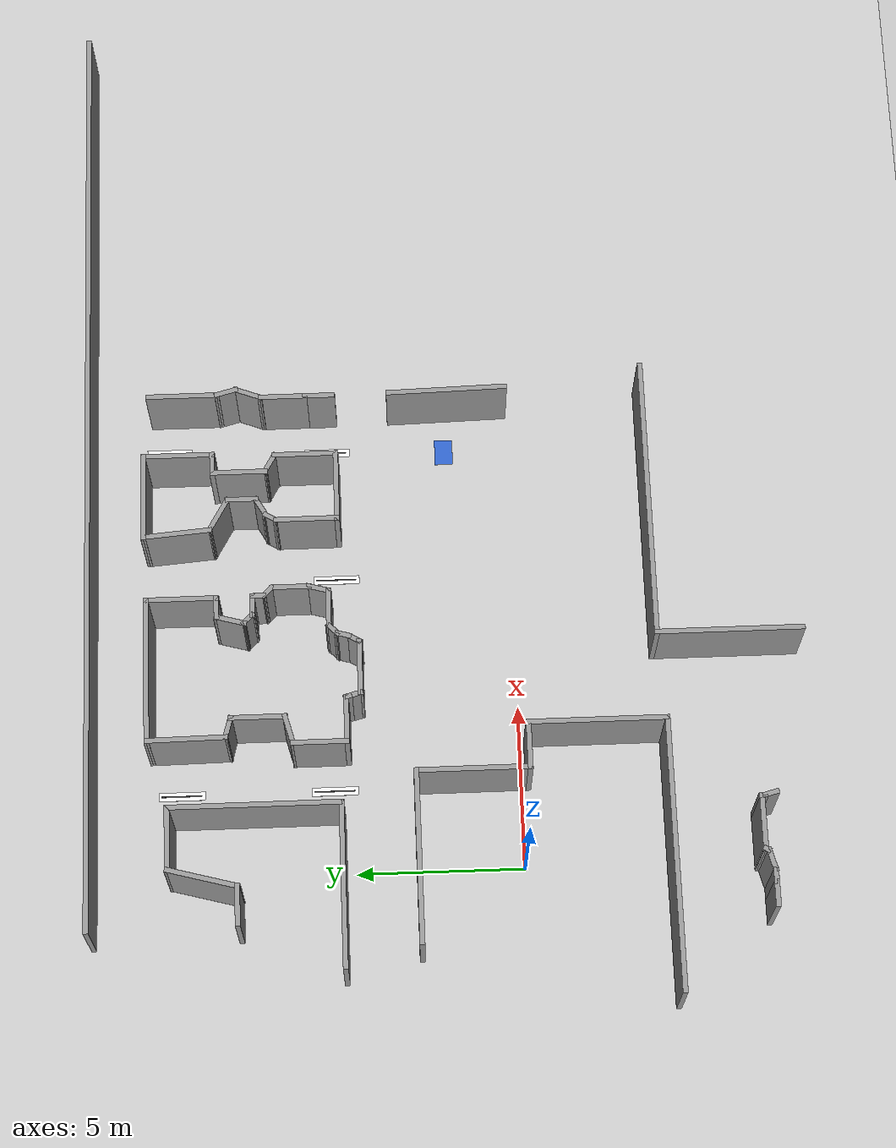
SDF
<sdf version="1.7">
 <world name="default">
  <model name="ground_plane">
   <static>1</static>
   <link name="link">
    <collision name="collision">
     <geometry><plane><normal>0 0 1</normal><size>100 100</size></plane></geometry>
     <surface>
      <contact><collide_bitmask>65535</collide_bitmask></contact>
      <friction><ode><mu>100</mu><mu2>50</mu2></ode></friction>
     </surface>
    </collision>
    <visual name="visual">
     <cast_shadows>0</cast_shadows>
     <geometry><plane><normal>0 0 1</normal><size>100 100</size></plane></geometry>
     <material>
      <script><uri>file://media/materials/scripts/gazebo.material</uri><name>Gazebo/Grey</name></script>
     </material>
    </visual>
   </link>
  </model>
  <model name="latest_world">
   <pose>-1.4911 -0.096187 0 0 -0 0</pose>
   <link name="Wall_2">
    <collision name="Wall_2_Collision">
     <geometry><box><size>29 0.15 2.5</size></box></geometry>
     <pose>0 0 1.25 0 -0 0</pose>
    </collision>
    <visual name="Wall_2_Visual">
     <pose>0 0 1.25 0 -0 0</pose>
     <geometry><box><size>29 0.15 2.5</size></box></geometry>
     <material>
      <script><uri>file://media/materials/scripts/gazebo.material</uri><name>Gazebo/Grey</name></script>
      <ambient>1 1 1 1</ambient>
     </material>
     <meta><layer>0</layer></meta>
    </visual>
    <pose>13.9801 12.9157 0 0 -0 0</pose>
   </link>
   <link name="Wall_293">
    <collision name="Wall_293_Collision">
     <geometry><box><size>0.5 0.15 2.5</size></box></geometry>
     <pose>0 0 1.25 0 -0 0</pose>
    </collision>
    <visual name="Wall_293_Visual">
     <pose>0 0 1.25 0 -0 0</pose>
     <geometry><box><size>0.5 0.15 2.5</size></box></geometry>
     <material>
      <script><uri>file://media/materials/scripts/gazebo.material</uri><name>Gazebo/Grey</name></script>
      <ambient>1 1 1 1</ambient>
     </material>
     <meta><layer>0</layer></meta>
    </visual>
    <pose>2.93361 -7.07316 0 0 -0 1.8326</pose>
   </link>
   <link name="Wall_294">
    <collision name="Wall_294_Collision">
     <geometry><box><size>0.25 0.15 2.5</size></box></geometry>
     <pose>0 0 1.25 0 -0 0</pose>
    </collision>
    <visual name="Wall_294_Visual">
     <pose>0 0 1.25 0 -0 0</pose>
     <geometry><box><size>0.25 0.15 2.5</size></box></geometry>
     <material>
      <script><uri>file://media/materials/scripts/gazebo.material</uri><name>Gazebo/Grey</name></script>
      <ambient>1 1 1 1</ambient>
     </material>
     <meta><layer>0</layer></meta>
    </visual>
    <pose>2.88831 -6.85413 0 0 -0 1.5708</pose>
   </link>
   <link name="Wall_295">
    <collision name="Wall_295_Collision">
     <geometry><box><size>1.75 0.15 2.5</size></box></geometry>
     <pose>0 0 1.25 0 -0 0</pose>
    </collision>
    <visual name="Wall_295_Visual">
     <pose>0 0 1.25 0 -0 0</pose>
     <geometry><box><size>1.75 0.15 2.5</size></box></geometry>
     <material>
      <script><uri>file://media/materials/scripts/gazebo.material</uri><name>Gazebo/Grey</name></script>
      <ambient>1 1 1 1</ambient>
     </material>
     <meta><layer>0</layer></meta>
    </visual>
    <pose>2.08831 -6.80413 0 0 -0 3.14159</pose>
   </link>
   <link name="Wall_296">
    <collision name="Wall_296_Collision">
     <geometry><box><size>0.25 0.15 2.5</size></box></geometry>
     <pose>0 0 1.25 0 -0 0</pose>
    </collision>
    <visual name="Wall_296_Visual">
     <pose>0 0 1.25 0 -0 0</pose>
     <geometry><box><size>0.25 0.15 2.5</size></box></geometry>
     <material>
      <script><uri>file://media/materials/scripts/gazebo.material</uri><name>Gazebo/Grey</name></script>
      <ambient>1 1 1 1</ambient>
     </material>
     <meta><layer>0</layer></meta>
    </visual>
    <pose>1.26331 -6.84743 0 0 -0 -2.0944</pose>
   </link>
   <link name="Wall_297">
    <collision name="Wall_297_Collision">
     <geometry><box><size>0.75 0.15 2.5</size></box></geometry>
     <pose>0 0 1.25 0 -0 0</pose>
    </collision>
    <visual name="Wall_297_Visual">
     <pose>0 0 1.25 0 -0 0</pose>
     <geometry><box><size>0.75 0.15 2.5</size></box></geometry>
     <material>
      <script><uri>file://media/materials/scripts/gazebo.material</uri><name>Gazebo/Grey</name></script>
      <ambient>1 1 1 1</ambient>
     </material>
     <meta><layer>0</layer></meta>
    </visual>
    <pose>0.948537 -6.96837 0 0 -0 -2.87979</pose>
   </link>
   <link name="Wall_298">
    <collision name="Wall_298_Collision">
     <geometry><box><size>0.5 0.15 2.5</size></box></geometry>
     <pose>0 0 1.25 0 -0 0</pose>
    </collision>
    <visual name="Wall_298_Visual">
     <pose>0 0 1.25 0 -0 0</pose>
     <geometry><box><size>0.5 0.15 2.5</size></box></geometry>
     <material>
      <script><uri>file://media/materials/scripts/gazebo.material</uri><name>Gazebo/Grey</name></script>
      <ambient>1 1 1 1</ambient>
     </material>
     <meta><layer>0</layer></meta>
    </visual>
    <pose>0.483759 -7.04602 0 0 -0 3.14159</pose>
   </link>
   <link name="Wall_299">
    <collision name="Wall_299_Collision">
     <geometry><box><size>0.813898 0.15 2.5</size></box></geometry>
     <pose>0 0 1.25 0 -0 0</pose>
    </collision>
    <visual name="Wall_299_Visual">
     <pose>0 0 1.25 0 -0 0</pose>
     <geometry><box><size>0.813898 0.15 2.5</size></box></geometry>
     <material>
      <script><uri>file://media/materials/scripts/gazebo.material</uri><name>Gazebo/Grey</name></script>
      <ambient>1 1 1 1</ambient>
     </material>
     <meta><layer>0</layer></meta>
    </visual>
    <pose>-0.023189 -7.04514 0 0 -0 3.13895</pose>
   </link>
   <link name="Wall_302">
    <collision name="Wall_302_Collision">
     <geometry><box><size>8.25 0.15 2.5</size></box></geometry>
     <pose>0 0 1.25 0 -0 0</pose>
    </collision>
    <visual name="Wall_302_Visual">
     <pose>0 0 1.25 0 -0 0</pose>
     <geometry><box><size>8.25 0.15 2.5</size></box></geometry>
     <material>
      <script><uri>file://media/materials/scripts/gazebo.material</uri><name>Gazebo/Grey</name></script>
      <ambient>1 1 1 1</ambient>
     </material>
     <meta><layer>0</layer></meta>
    </visual>
    <pose>1.29517 -4.19712 0 0 -0 0</pose>
   </link>
   <link name="Wall_303">
    <collision name="Wall_303_Collision">
     <geometry><box><size>4.25 0.15 2.5</size></box></geometry>
     <pose>0 0 1.25 0 -0 0</pose>
    </collision>
    <visual name="Wall_303_Visual">
     <pose>0 0 1.25 0 -0 0</pose>
     <geometry><box><size>4.25 0.15 2.5</size></box></geometry>
     <material>
      <script><uri>file://media/materials/scripts/gazebo.material</uri><name>Gazebo/Grey</name></script>
      <ambient>1 1 1 1</ambient>
     </material>
     <meta><layer>0</layer></meta>
    </visual>
    <pose>5.34517 -2.14712 0 0 -0 1.5708</pose>
   </link>
   <link name="Wall_304">
    <collision name="Wall_304_Collision">
     <geometry><box><size>1.5 0.15 2.5</size></box></geometry>
     <pose>0 0 1.25 0 -0 0</pose>
    </collision>
    <visual name="Wall_304_Visual">
     <pose>0 0 1.25 0 -0 0</pose>
     <geometry><box><size>1.5 0.15 2.5</size></box></geometry>
     <material>
      <script><uri>file://media/materials/scripts/gazebo.material</uri><name>Gazebo/Grey</name></script>
      <ambient>1 1 1 1</ambient>
     </material>
     <meta><layer>0</layer></meta>
    </visual>
    <pose>4.67017 -0.097116 0 0 -0 3.14159</pose>
   </link>
   <link name="Wall_305">
    <collision name="Wall_305_Collision">
     <geometry><box><size>3.5 0.15 2.5</size></box></geometry>
     <pose>0 0 1.25 0 -0 0</pose>
    </collision>
    <visual name="Wall_305_Visual">
     <pose>0 0 1.25 0 -0 0</pose>
     <geometry><box><size>3.5 0.15 2.5</size></box></geometry>
     <material>
      <script><uri>file://media/materials/scripts/gazebo.material</uri><name>Gazebo/Grey</name></script>
      <ambient>1 1 1 1</ambient>
     </material>
     <meta><layer>0</layer></meta>
    </visual>
    <pose>3.99517 1.57788 0 0 -0 1.5708</pose>
   </link>
   <link name="Wall_306">
    <collision name="Wall_306_Collision">
     <geometry><box><size>5.25 0.15 2.5</size></box></geometry>
     <pose>0 0 1.25 0 -0 0</pose>
    </collision>
    <visual name="Wall_306_Visual">
     <pose>0 0 1.25 0 -0 0</pose>
     <geometry><box><size>5.25 0.15 2.5</size></box></geometry>
     <material>
      <script><uri>file://media/materials/scripts/gazebo.material</uri><name>Gazebo/Grey</name></script>
      <ambient>1 1 1 1</ambient>
     </material>
     <meta><layer>0</layer></meta>
    </visual>
    <pose>1.44517 3.25288 0 0 -0 3.14159</pose>
   </link>
   <link name="Wall_311">
    <collision name="Wall_311_Collision">
     <geometry><box><size>5 0.15 2.5</size></box></geometry>
     <pose>0 0 1.25 0 -0 0</pose>
    </collision>
    <visual name="Wall_311_Visual">
     <pose>0 0 1.25 0 -0 0</pose>
     <geometry><box><size>5 0.15 2.5</size></box></geometry>
     <material>
      <script><uri>file://media/materials/scripts/gazebo.material</uri><name>Gazebo/Grey</name></script>
      <ambient>1 1 1 1</ambient>
     </material>
     <meta><layer>0</layer></meta>
    </visual>
    <pose>0.702425 5.46931 0 0 -0 0</pose>
   </link>
   <link name="Wall_312">
    <collision name="Wall_312_Collision">
     <geometry><box><size>5.25 0.15 2.5</size></box></geometry>
     <pose>0 0 1.25 0 -0 0</pose>
    </collision>
    <visual name="Wall_312_Visual">
     <pose>0 0 1.25 0 -0 0</pose>
     <geometry><box><size>5.25 0.15 2.5</size></box></geometry>
     <material>
      <script><uri>file://media/materials/scripts/gazebo.material</uri><name>Gazebo/Grey</name></script>
      <ambient>1 1 1 1</ambient>
     </material>
     <meta><layer>0</layer></meta>
    </visual>
    <pose>3.12743 8.01931 0 0 -0 1.5708</pose>
   </link>
   <link name="Wall_313">
    <collision name="Wall_313_Collision">
     <geometry><box><size>2 0.15 2.5</size></box></geometry>
     <pose>0 0 1.25 0 -0 0</pose>
    </collision>
    <visual name="Wall_313_Visual">
     <pose>0 0 1.25 0 -0 0</pose>
     <geometry><box><size>2 0.15 2.5</size></box></geometry>
     <material>
      <script><uri>file://media/materials/scripts/gazebo.material</uri><name>Gazebo/Grey</name></script>
      <ambient>1 1 1 1</ambient>
     </material>
     <meta><layer>0</layer></meta>
    </visual>
    <pose>2.20242 10.5693 0 0 -0 3.14159</pose>
   </link>
   <link name="Wall_314">
    <collision name="Wall_314_Collision">
     <geometry><box><size>2.25 0.15 2.5</size></box></geometry>
     <pose>0 0 1.25 0 -0 0</pose>
    </collision>
    <visual name="Wall_314_Visual">
     <pose>0 0 1.25 0 -0 0</pose>
     <geometry><box><size>2.25 0.15 2.5</size></box></geometry>
     <material>
      <script><uri>file://media/materials/scripts/gazebo.material</uri><name>Gazebo/Grey</name></script>
      <ambient>1 1 1 1</ambient>
     </material>
     <meta><layer>0</layer></meta>
    </visual>
    <pose>1.00567 9.55509 0 0 -0 -1.8326</pose>
   </link>
   <link name="Wall_315">
    <collision name="Wall_315_Collision">
     <geometry><box><size>1.25 0.15 2.5</size></box></geometry>
     <pose>0 0 1.25 0 -0 0</pose>
    </collision>
    <visual name="Wall_315_Visual">
     <pose>0 0 1.25 0 -0 0</pose>
     <geometry><box><size>1.25 0.15 2.5</size></box></geometry>
     <material>
      <script><uri>file://media/materials/scripts/gazebo.material</uri><name>Gazebo/Grey</name></script>
      <ambient>1 1 1 1</ambient>
     </material>
     <meta><layer>0</layer></meta>
    </visual>
    <pose>0.183905 8.54087 0 0 -0 3.14159</pose>
   </link>
   <link name="Wall_319">
    <collision name="Wall_319_Collision">
     <geometry><box><size>4.5 0.15 2.5</size></box></geometry>
     <pose>0 0 1.25 0 -0 0</pose>
    </collision>
    <visual name="Wall_319_Visual">
     <pose>0 0 1.25 0 -0 0</pose>
     <geometry><box><size>4.5 0.15 2.5</size></box></geometry>
     <material>
      <script><uri>file://media/materials/scripts/gazebo.material</uri><name>Gazebo/Grey</name></script>
      <ambient>1 1 1 1</ambient>
     </material>
     <meta><layer>0</layer></meta>
    </visual>
    <pose>7.33934 11.1509 0 0 -0 0</pose>
   </link>
   <link name="Wall_320">
    <collision name="Wall_320_Collision">
     <geometry><box><size>2.25 0.15 2.5</size></box></geometry>
     <pose>0 0 1.25 0 -0 0</pose>
    </collision>
    <visual name="Wall_320_Visual">
     <pose>0 0 1.25 0 -0 0</pose>
     <geometry><box><size>2.25 0.15 2.5</size></box></geometry>
     <material>
      <script><uri>file://media/materials/scripts/gazebo.material</uri><name>Gazebo/Grey</name></script>
      <ambient>1 1 1 1</ambient>
     </material>
     <meta><layer>0</layer></meta>
    </visual>
    <pose>9.51434 10.1009 0 0 -0 -1.5708</pose>
   </link>
   <link name="Wall_321">
    <collision name="Wall_321_Collision">
     <geometry><box><size>0.75 0.15 2.5</size></box></geometry>
     <pose>0 0 1.25 0 -0 0</pose>
    </collision>
    <visual name="Wall_321_Visual">
     <pose>0 0 1.25 0 -0 0</pose>
     <geometry><box><size>0.75 0.15 2.5</size></box></geometry>
     <material>
      <script><uri>file://media/materials/scripts/gazebo.material</uri><name>Gazebo/Grey</name></script>
      <ambient>1 1 1 1</ambient>
     </material>
     <meta><layer>0</layer></meta>
    </visual>
    <pose>9.21434 9.05093 0 0 -0 3.14159</pose>
   </link>
   <link name="Wall_322">
    <collision name="Wall_322_Collision">
     <geometry><box><size>1 0.15 2.5</size></box></geometry>
     <pose>0 0 1.25 0 -0 0</pose>
    </collision>
    <visual name="Wall_322_Visual">
     <pose>0 0 1.25 0 -0 0</pose>
     <geometry><box><size>1 0.15 2.5</size></box></geometry>
     <material>
      <script><uri>file://media/materials/scripts/gazebo.material</uri><name>Gazebo/Grey</name></script>
      <ambient>1 1 1 1</ambient>
     </material>
     <meta><layer>0</layer></meta>
    </visual>
    <pose>8.80434 8.64041 0 0 -0 -1.8326</pose>
   </link>
   <link name="Wall_323">
    <collision name="Wall_323_Collision">
     <geometry><box><size>0.5 0.15 2.5</size></box></geometry>
     <pose>0 0 1.25 0 -0 0</pose>
    </collision>
    <visual name="Wall_323_Visual">
     <pose>0 0 1.25 0 -0 0</pose>
     <geometry><box><size>0.5 0.15 2.5</size></box></geometry>
     <material>
      <script><uri>file://media/materials/scripts/gazebo.material</uri><name>Gazebo/Grey</name></script>
      <ambient>1 1 1 1</ambient>
     </material>
     <meta><layer>0</layer></meta>
    </visual>
    <pose>8.81809 8.10615 0 0 -0 -0.785398</pose>
   </link>
   <link name="Wall_324">
    <collision name="Wall_324_Collision">
     <geometry><box><size>0.75 0.15 2.5</size></box></geometry>
     <pose>0 0 1.25 0 -0 0</pose>
    </collision>
    <visual name="Wall_324_Visual">
     <pose>0 0 1.25 0 -0 0</pose>
     <geometry><box><size>0.75 0.15 2.5</size></box></geometry>
     <material>
      <script><uri>file://media/materials/scripts/gazebo.material</uri><name>Gazebo/Grey</name></script>
      <ambient>1 1 1 1</ambient>
     </material>
     <meta><layer>0</layer></meta>
    </visual>
    <pose>9.24183 7.98241 0 0 -0 0</pose>
   </link>
   <link name="Wall_325">
    <collision name="Wall_325_Collision">
     <geometry><box><size>0.5 0.15 2.5</size></box></geometry>
     <pose>0 0 1.25 0 -0 0</pose>
    </collision>
    <visual name="Wall_325_Visual">
     <pose>0 0 1.25 0 -0 0</pose>
     <geometry><box><size>0.5 0.15 2.5</size></box></geometry>
     <material>
      <script><uri>file://media/materials/scripts/gazebo.material</uri><name>Gazebo/Grey</name></script>
      <ambient>1 1 1 1</ambient>
     </material>
     <meta><layer>0</layer></meta>
    </visual>
    <pose>9.54183 7.80741 0 0 -0 -1.5708</pose>
   </link>
   <link name="Wall_326">
    <collision name="Wall_326_Collision">
     <geometry><box><size>0.5 0.15 2.5</size></box></geometry>
     <pose>0 0 1.25 0 -0 0</pose>
    </collision>
    <visual name="Wall_326_Visual">
     <pose>0 0 1.25 0 -0 0</pose>
     <geometry><box><size>0.5 0.15 2.5</size></box></geometry>
     <material>
      <script><uri>file://media/materials/scripts/gazebo.material</uri><name>Gazebo/Grey</name></script>
      <ambient>1 1 1 1</ambient>
     </material>
     <meta><layer>0</layer></meta>
    </visual>
    <pose>9.66557 7.50866 0 0 -0 -0.785398</pose>
   </link>
   <link name="Wall_327">
    <collision name="Wall_327_Collision">
     <geometry><box><size>1.25 0.15 2.5</size></box></geometry>
     <pose>0 0 1.25 0 -0 0</pose>
    </collision>
    <visual name="Wall_327_Visual">
     <pose>0 0 1.25 0 -0 0</pose>
     <geometry><box><size>1.25 0.15 2.5</size></box></geometry>
     <material>
      <script><uri>file://media/materials/scripts/gazebo.material</uri><name>Gazebo/Grey</name></script>
      <ambient>1 1 1 1</ambient>
     </material>
     <meta><layer>0</layer></meta>
    </visual>
    <pose>9.78932 6.83492 0 0 -0 -1.5708</pose>
   </link>
   <link name="Wall_328">
    <collision name="Wall_328_Collision">
     <geometry><box><size>0.75 0.15 2.5</size></box></geometry>
     <pose>0 0 1.25 0 -0 0</pose>
    </collision>
    <visual name="Wall_328_Visual">
     <pose>0 0 1.25 0 -0 0</pose>
     <geometry><box><size>0.75 0.15 2.5</size></box></geometry>
     <material>
      <script><uri>file://media/materials/scripts/gazebo.material</uri><name>Gazebo/Grey</name></script>
      <ambient>1 1 1 1</ambient>
     </material>
     <meta><layer>0</layer></meta>
    </visual>
    <pose>9.71167 5.99514 0 0 -0 -1.8326</pose>
   </link>
   <link name="Wall_329">
    <collision name="Wall_329_Collision">
     <geometry><box><size>1.25 0.15 2.5</size></box></geometry>
     <pose>0 0 1.25 0 -0 0</pose>
    </collision>
    <visual name="Wall_329_Visual">
     <pose>0 0 1.25 0 -0 0</pose>
     <geometry><box><size>1.25 0.15 2.5</size></box></geometry>
     <material>
      <script><uri>file://media/materials/scripts/gazebo.material</uri><name>Gazebo/Grey</name></script>
      <ambient>1 1 1 1</ambient>
     </material>
     <meta><layer>0</layer></meta>
    </visual>
    <pose>9.08403 5.70537 0 0 -0 3.14159</pose>
   </link>
   <link name="Wall_330">
    <collision name="Wall_330_Collision">
     <geometry><box><size>0.5 0.15 2.5</size></box></geometry>
     <pose>0 0 1.25 0 -0 0</pose>
    </collision>
    <visual name="Wall_330_Visual">
     <pose>0 0 1.25 0 -0 0</pose>
     <geometry><box><size>0.5 0.15 2.5</size></box></geometry>
     <material>
      <script><uri>file://media/materials/scripts/gazebo.material</uri><name>Gazebo/Grey</name></script>
      <ambient>1 1 1 1</ambient>
     </material>
     <meta><layer>0</layer></meta>
    </visual>
    <pose>8.41028 5.58162 0 0 -0 -2.35619</pose>
   </link>
   <link name="Wall_331">
    <collision name="Wall_331_Collision">
     <geometry><box><size>0.5 0.15 2.5</size></box></geometry>
     <pose>0 0 1.25 0 -0 0</pose>
    </collision>
    <visual name="Wall_331_Visual">
     <pose>0 0 1.25 0 -0 0</pose>
     <geometry><box><size>0.5 0.15 2.5</size></box></geometry>
     <material>
      <script><uri>file://media/materials/scripts/gazebo.material</uri><name>Gazebo/Grey</name></script>
      <ambient>1 1 1 1</ambient>
     </material>
     <meta><layer>0</layer></meta>
    </visual>
    <pose>8.24124 5.28884 0 0 -0 -1.8326</pose>
   </link>
   <link name="Wall_332">
    <collision name="Wall_332_Collision">
     <geometry><box><size>0.5 0.15 2.5</size></box></geometry>
     <pose>0 0 1.25 0 -0 0</pose>
    </collision>
    <visual name="Wall_332_Visual">
     <pose>0 0 1.25 0 -0 0</pose>
     <geometry><box><size>0.5 0.15 2.5</size></box></geometry>
     <material>
      <script><uri>file://media/materials/scripts/gazebo.material</uri><name>Gazebo/Grey</name></script>
      <ambient>1 1 1 1</ambient>
     </material>
     <meta><layer>0</layer></meta>
    </visual>
    <pose>8.10845 4.96825 0 0 -0 -2.0944</pose>
   </link>
   <link name="Wall_333">
    <collision name="Wall_333_Collision">
     <geometry><box><size>1.75 0.15 2.5</size></box></geometry>
     <pose>0 0 1.25 0 -0 0</pose>
    </collision>
    <visual name="Wall_333_Visual">
     <pose>0 0 1.25 0 -0 0</pose>
     <geometry><box><size>1.75 0.15 2.5</size></box></geometry>
     <material>
      <script><uri>file://media/materials/scripts/gazebo.material</uri><name>Gazebo/Grey</name></script>
      <ambient>1 1 1 1</ambient>
     </material>
     <meta><layer>0</layer></meta>
    </visual>
    <pose>7.22095 4.8167 0 0 -0 3.14159</pose>
   </link>
   <link name="Wall_334">
    <collision name="Wall_334_Collision">
     <geometry><box><size>0.5 0.15 2.5</size></box></geometry>
     <pose>0 0 1.25 0 -0 0</pose>
    </collision>
    <visual name="Wall_334_Visual">
     <pose>0 0 1.25 0 -0 0</pose>
     <geometry><box><size>0.5 0.15 2.5</size></box></geometry>
     <material>
      <script><uri>file://media/materials/scripts/gazebo.material</uri><name>Gazebo/Grey</name></script>
      <ambient>1 1 1 1</ambient>
     </material>
     <meta><layer>0</layer></meta>
    </visual>
    <pose>6.37566 4.98573 0 0 -0 1.8326</pose>
   </link>
   <link name="Wall_335">
    <collision name="Wall_335_Collision">
     <geometry><box><size>0.25 0.15 2.5</size></box></geometry>
     <pose>0 0 1.25 0 -0 0</pose>
    </collision>
    <visual name="Wall_335_Visual">
     <pose>0 0 1.25 0 -0 0</pose>
     <geometry><box><size>0.25 0.15 2.5</size></box></geometry>
     <material>
      <script><uri>file://media/materials/scripts/gazebo.material</uri><name>Gazebo/Grey</name></script>
      <ambient>1 1 1 1</ambient>
     </material>
     <meta><layer>0</layer></meta>
    </visual>
    <pose>6.31742 5.20307 0 0 -0 1.8326</pose>
   </link>
   <link name="Wall_336">
    <collision name="Wall_336_Collision">
     <geometry><box><size>1.5 0.15 2.5</size></box></geometry>
     <pose>0 0 1.25 0 -0 0</pose>
    </collision>
    <visual name="Wall_336_Visual">
     <pose>0 0 1.25 0 -0 0</pose>
     <geometry><box><size>1.5 0.15 2.5</size></box></geometry>
     <material>
      <script><uri>file://media/materials/scripts/gazebo.material</uri><name>Gazebo/Grey</name></script>
      <ambient>1 1 1 1</ambient>
     </material>
     <meta><layer>0</layer></meta>
    </visual>
    <pose>5.62948 5.25136 0 0 -0 3.14159</pose>
   </link>
   <link name="Wall_337">
    <collision name="Wall_337_Collision">
     <geometry><box><size>1.75 0.15 2.5</size></box></geometry>
     <pose>0 0 1.25 0 -0 0</pose>
    </collision>
    <visual name="Wall_337_Visual">
     <pose>0 0 1.25 0 -0 0</pose>
     <geometry><box><size>1.75 0.15 2.5</size></box></geometry>
     <material>
      <script><uri>file://media/materials/scripts/gazebo.material</uri><name>Gazebo/Grey</name></script>
      <ambient>1 1 1 1</ambient>
     </material>
     <meta><layer>0</layer></meta>
    </visual>
    <pose>4.95448 6.05136 0 0 -0 1.5708</pose>
   </link>
   <link name="Wall_338">
    <collision name="Wall_338_Collision">
     <geometry><box><size>1 0.15 2.5</size></box></geometry>
     <pose>0 0 1.25 0 -0 0</pose>
    </collision>
    <visual name="Wall_338_Visual">
     <pose>0 0 1.25 0 -0 0</pose>
     <geometry><box><size>1 0.15 2.5</size></box></geometry>
     <material>
      <script><uri>file://media/materials/scripts/gazebo.material</uri><name>Gazebo/Grey</name></script>
      <ambient>1 1 1 1</ambient>
     </material>
     <meta><layer>0</layer></meta>
    </visual>
    <pose>5.365 6.96136 0 0 -0 0.261799</pose>
   </link>
   <link name="Wall_339">
    <collision name="Wall_339_Collision">
     <geometry><box><size>1.75 0.15 2.5</size></box></geometry>
     <pose>0 0 1.25 0 -0 0</pose>
    </collision>
    <visual name="Wall_339_Visual">
     <pose>0 0 1.25 0 -0 0</pose>
     <geometry><box><size>1.75 0.15 2.5</size></box></geometry>
     <material>
      <script><uri>file://media/materials/scripts/gazebo.material</uri><name>Gazebo/Grey</name></script>
      <ambient>1 1 1 1</ambient>
     </material>
     <meta><layer>0</layer></meta>
    </visual>
    <pose>5.77552 7.87136 0 0 -0 1.5708</pose>
   </link>
   <link name="Wall_340">
    <collision name="Wall_340_Collision">
     <geometry><box><size>0.75 0.15 2.5</size></box></geometry>
     <pose>0 0 1.25 0 -0 0</pose>
    </collision>
    <visual name="Wall_340_Visual">
     <pose>0 0 1.25 0 -0 0</pose>
     <geometry><box><size>0.75 0.15 2.5</size></box></geometry>
     <material>
      <script><uri>file://media/materials/scripts/gazebo.material</uri><name>Gazebo/Grey</name></script>
      <ambient>1 1 1 1</ambient>
     </material>
     <meta><layer>0</layer></meta>
    </visual>
    <pose>5.48574 8.749 0 0 -0 2.87979</pose>
   </link>
   <link name="Wall_341">
    <collision name="Wall_341_Collision">
     <geometry><box><size>2.4745 0.15 2.5</size></box></geometry>
     <pose>0 0 1.25 0 -0 0</pose>
    </collision>
    <visual name="Wall_341_Visual">
     <pose>0 0 1.25 0 -0 0</pose>
     <geometry><box><size>2.4745 0.15 2.5</size></box></geometry>
     <material>
      <script><uri>file://media/materials/scripts/gazebo.material</uri><name>Gazebo/Grey</name></script>
      <ambient>1 1 1 1</ambient>
     </material>
     <meta><layer>0</layer></meta>
    </visual>
    <pose>5.18015 9.98879 0 0 -0 1.5844</pose>
   </link>
   <link name="Wall_343">
    <collision name="Wall_343_Collision">
     <geometry><box><size>2.75 0.15 2.5</size></box></geometry>
     <pose>0 0 1.25 0 -0 0</pose>
    </collision>
    <visual name="Wall_343_Visual">
     <pose>0 0 1.25 0 -0 0</pose>
     <geometry><box><size>2.75 0.15 2.5</size></box></geometry>
     <material>
      <script><uri>file://media/materials/scripts/gazebo.material</uri><name>Gazebo/Grey</name></script>
      <ambient>1 1 1 1</ambient>
     </material>
     <meta><layer>0</layer></meta>
    </visual>
    <pose>12.8177 11.227 0 0 -0 0</pose>
   </link>
   <link name="Wall_344">
    <collision name="Wall_344_Collision">
     <geometry><box><size>2.25 0.15 2.5</size></box></geometry>
     <pose>0 0 1.25 0 -0 0</pose>
    </collision>
    <visual name="Wall_344_Visual">
     <pose>0 0 1.25 0 -0 0</pose>
     <geometry><box><size>2.25 0.15 2.5</size></box></geometry>
     <material>
      <script><uri>file://media/materials/scripts/gazebo.material</uri><name>Gazebo/Grey</name></script>
      <ambient>1 1 1 1</ambient>
     </material>
     <meta><layer>0</layer></meta>
    </visual>
    <pose>14.1177 10.177 0 0 -0 -1.5708</pose>
   </link>
   <link name="Wall_345">
    <collision name="Wall_345_Collision">
     <geometry><box><size>0.75 0.15 2.5</size></box></geometry>
     <pose>0 0 1.25 0 -0 0</pose>
    </collision>
    <visual name="Wall_345_Visual">
     <pose>0 0 1.25 0 -0 0</pose>
     <geometry><box><size>0.75 0.15 2.5</size></box></geometry>
     <material>
      <script><uri>file://media/materials/scripts/gazebo.material</uri><name>Gazebo/Grey</name></script>
      <ambient>1 1 1 1</ambient>
     </material>
     <meta><layer>0</layer></meta>
    </visual>
    <pose>13.8177 9.12701 0 0 -0 3.14159</pose>
   </link>
   <link name="Wall_346">
    <collision name="Wall_346_Collision">
     <geometry><box><size>1.75 0.15 2.5</size></box></geometry>
     <pose>0 0 1.25 0 -0 0</pose>
    </collision>
    <visual name="Wall_346_Visual">
     <pose>0 0 1.25 0 -0 0</pose>
     <geometry><box><size>1.75 0.15 2.5</size></box></geometry>
     <material>
      <script><uri>file://media/materials/scripts/gazebo.material</uri><name>Gazebo/Grey</name></script>
      <ambient>1 1 1 1</ambient>
     </material>
     <meta><layer>0</layer></meta>
    </visual>
    <pose>13.5177 8.327 0 0 -0 -1.5708</pose>
   </link>
   <link name="Wall_347">
    <collision name="Wall_347_Collision">
     <geometry><box><size>0.75 0.15 2.5</size></box></geometry>
     <pose>0 0 1.25 0 -0 0</pose>
    </collision>
    <visual name="Wall_347_Visual">
     <pose>0 0 1.25 0 -0 0</pose>
     <geometry><box><size>0.75 0.15 2.5</size></box></geometry>
     <material>
      <script><uri>file://media/materials/scripts/gazebo.material</uri><name>Gazebo/Grey</name></script>
      <ambient>1 1 1 1</ambient>
     </material>
     <meta><layer>0</layer></meta>
    </visual>
    <pose>13.7775 7.377 0 0 -0 -0.523599</pose>
   </link>
   <link name="Wall_348">
    <collision name="Wall_348_Collision">
     <geometry><box><size>2 0.15 2.5</size></box></geometry>
     <pose>0 0 1.25 0 -0 0</pose>
    </collision>
    <visual name="Wall_348_Visual">
     <pose>0 0 1.25 0 -0 0</pose>
     <geometry><box><size>2 0.15 2.5</size></box></geometry>
     <material>
      <script><uri>file://media/materials/scripts/gazebo.material</uri><name>Gazebo/Grey</name></script>
      <ambient>1 1 1 1</ambient>
     </material>
     <meta><layer>0</layer></meta>
    </visual>
    <pose>14.0373 6.30201 0 0 -0 -1.5708</pose>
   </link>
   <link name="Wall_349">
    <collision name="Wall_349_Collision">
     <geometry><box><size>2.25 0.15 2.5</size></box></geometry>
     <pose>0 0 1.25 0 -0 0</pose>
    </collision>
    <visual name="Wall_349_Visual">
     <pose>0 0 1.25 0 -0 0</pose>
     <geometry><box><size>2.25 0.15 2.5</size></box></geometry>
     <material>
      <script><uri>file://media/materials/scripts/gazebo.material</uri><name>Gazebo/Grey</name></script>
      <ambient>1 1 1 1</ambient>
     </material>
     <meta><layer>0</layer></meta>
    </visual>
    <pose>12.9873 5.377 0 0 -0 3.14159</pose>
   </link>
   <link name="Wall_350">
    <collision name="Wall_350_Collision">
     <geometry><box><size>2 0.15 2.5</size></box></geometry>
     <pose>0 0 1.25 0 -0 0</pose>
    </collision>
    <visual name="Wall_350_Visual">
     <pose>0 0 1.25 0 -0 0</pose>
     <geometry><box><size>2 0.15 2.5</size></box></geometry>
     <material>
      <script><uri>file://media/materials/scripts/gazebo.material</uri><name>Gazebo/Grey</name></script>
      <ambient>1 1 1 1</ambient>
     </material>
     <meta><layer>0</layer></meta>
    </visual>
    <pose>11.9373 6.30201 0 0 -0 1.5708</pose>
   </link>
   <link name="Wall_351">
    <collision name="Wall_351_Collision">
     <geometry><box><size>0.5 0.15 2.5</size></box></geometry>
     <pose>0 0 1.25 0 -0 0</pose>
    </collision>
    <visual name="Wall_351_Visual">
     <pose>0 0 1.25 0 -0 0</pose>
     <geometry><box><size>0.5 0.15 2.5</size></box></geometry>
     <material>
      <script><uri>file://media/materials/scripts/gazebo.material</uri><name>Gazebo/Grey</name></script>
      <ambient>1 1 1 1</ambient>
     </material>
     <meta><layer>0</layer></meta>
    </visual>
    <pose>12.0248 7.37856 0 0 -0 1.0472</pose>
   </link>
   <link name="Wall_352">
    <collision name="Wall_352_Collision">
     <geometry><box><size>0.75 0.15 2.5</size></box></geometry>
     <pose>0 0 1.25 0 -0 0</pose>
    </collision>
    <visual name="Wall_352_Visual">
     <pose>0 0 1.25 0 -0 0</pose>
     <geometry><box><size>0.75 0.15 2.5</size></box></geometry>
     <material>
      <script><uri>file://media/materials/scripts/gazebo.material</uri><name>Gazebo/Grey</name></script>
      <ambient>1 1 1 1</ambient>
     </material>
     <meta><layer>0</layer></meta>
    </visual>
    <pose>12.3722 7.68011 0 0 -0 0.523599</pose>
   </link>
   <link name="Wall_353">
    <collision name="Wall_353_Collision">
     <geometry><box><size>1 0.15 2.5</size></box></geometry>
     <pose>0 0 1.25 0 -0 0</pose>
    </collision>
    <visual name="Wall_353_Visual">
     <pose>0 0 1.25 0 -0 0</pose>
     <geometry><box><size>1 0.15 2.5</size></box></geometry>
     <material>
      <script><uri>file://media/materials/scripts/gazebo.material</uri><name>Gazebo/Grey</name></script>
      <ambient>1 1 1 1</ambient>
     </material>
     <meta><layer>0</layer></meta>
    </visual>
    <pose>12.632 8.25511 0 0 -0 1.5708</pose>
   </link>
   <link name="Wall_354">
    <collision name="Wall_354_Collision">
     <geometry><box><size>1.25 0.15 2.5</size></box></geometry>
     <pose>0 0 1.25 0 -0 0</pose>
    </collision>
    <visual name="Wall_354_Visual">
     <pose>0 0 1.25 0 -0 0</pose>
     <geometry><box><size>1.25 0.15 2.5</size></box></geometry>
     <material>
      <script><uri>file://media/materials/scripts/gazebo.material</uri><name>Gazebo/Grey</name></script>
      <ambient>1 1 1 1</ambient>
     </material>
     <meta><layer>0</layer></meta>
    </visual>
    <pose>12.1556 8.95511 0 0 -0 2.61799</pose>
   </link>
   <link name="Wall_355">
    <collision name="Wall_355_Collision">
     <geometry><box><size>2.15342 0.15 2.5</size></box></geometry>
     <pose>0 0 1.25 0 -0 0</pose>
    </collision>
    <visual name="Wall_355_Visual">
     <pose>0 0 1.25 0 -0 0</pose>
     <geometry><box><size>2.15342 0.15 2.5</size></box></geometry>
     <material>
      <script><uri>file://media/materials/scripts/gazebo.material</uri><name>Gazebo/Grey</name></script>
      <ambient>1 1 1 1</ambient>
     </material>
     <meta><layer>0</layer></meta>
    </visual>
    <pose>11.5985 10.2286 0 0 -0 1.65155</pose>
   </link>
   <link name="Wall_357">
    <collision name="Wall_357_Collision">
     <geometry><box><size>1.5 0.15 2.5</size></box></geometry>
     <pose>0 0 1.25 0 -0 0</pose>
    </collision>
    <visual name="Wall_357_Visual">
     <pose>0 0 1.25 0 -0 0</pose>
     <geometry><box><size>1.5 0.15 2.5</size></box></geometry>
     <material>
      <script><uri>file://media/materials/scripts/gazebo.material</uri><name>Gazebo/Grey</name></script>
      <ambient>1 1 1 1</ambient>
     </material>
     <meta><layer>0</layer></meta>
    </visual>
    <pose>15.9449 6.95273 0 0 -0 -1.5708</pose>
   </link>
   <link name="Wall_358">
    <collision name="Wall_358_Collision">
     <geometry><box><size>1 0.15 2.5</size></box></geometry>
     <pose>0 0 1.25 0 -0 0</pose>
    </collision>
    <visual name="Wall_358_Visual">
     <pose>0 0 1.25 0 -0 0</pose>
     <geometry><box><size>1 0.15 2.5</size></box></geometry>
     <material>
      <script><uri>file://media/materials/scripts/gazebo.material</uri><name>Gazebo/Grey</name></script>
      <ambient>1 1 1 1</ambient>
     </material>
     <meta><layer>0</layer></meta>
    </visual>
    <pose>15.9449 5.85273 0 0 -0 -1.5708</pose>
   </link>
   <link name="Wall_368">
    <collision name="Wall_368_Collision">
     <geometry><box><size>2.25 0.15 2.5</size></box></geometry>
     <pose>0 0 1.25 0 -0 0</pose>
    </collision>
    <visual name="Wall_368_Visual">
     <pose>0 0 1.25 0 -0 0</pose>
     <geometry><box><size>2.25 0.15 2.5</size></box></geometry>
     <material>
      <script><uri>file://media/materials/scripts/gazebo.material</uri><name>Gazebo/Grey</name></script>
      <ambient>1 1 1 1</ambient>
     </material>
     <meta><layer>0</layer></meta>
    </visual>
    <pose>16.0713 10.0166 0 0 -0 -1.5708</pose>
   </link>
   <link name="Wall_369">
    <collision name="Wall_369_Collision">
     <geometry><box><size>0.75 0.15 2.5</size></box></geometry>
     <pose>0 0 1.25 0 -0 0</pose>
    </collision>
    <visual name="Wall_369_Visual">
     <pose>0 0 1.25 0 -0 0</pose>
     <geometry><box><size>0.75 0.15 2.5</size></box></geometry>
     <material>
      <script><uri>file://media/materials/scripts/gazebo.material</uri><name>Gazebo/Grey</name></script>
      <ambient>1 1 1 1</ambient>
     </material>
     <meta><layer>0</layer></meta>
    </visual>
    <pose>16.149 8.67687 0 0 -0 -1.309</pose>
   </link>
   <link name="Wall_370">
    <collision name="Wall_370_Collision">
     <geometry><box><size>0.959947 0.15 2.5</size></box></geometry>
     <pose>0 0 1.25 0 -0 0</pose>
    </collision>
    <visual name="Wall_370_Visual">
     <pose>0 0 1.25 0 -0 0</pose>
     <geometry><box><size>0.959947 0.15 2.5</size></box></geometry>
     <material>
      <script><uri>file://media/materials/scripts/gazebo.material</uri><name>Gazebo/Grey</name></script>
      <ambient>1 1 1 1</ambient>
     </material>
     <meta><layer>0</layer></meta>
    </visual>
    <pose>16.0858 8.00741 0 0 -0 -1.92611</pose>
   </link>
   <link name="Wall_402">
    <collision name="Wall_402_Collision">
     <geometry><box><size>3.70346 0.15 2.5</size></box></geometry>
     <pose>0 0 1.25 0 -0 0</pose>
    </collision>
    <visual name="Wall_402_Visual">
     <pose>0 0 1.25 0 -0 0</pose>
     <geometry><box><size>3.70346 0.15 2.5</size></box></geometry>
     <material>
      <script><uri>file://media/materials/scripts/gazebo.material</uri><name>Gazebo/Grey</name></script>
      <ambient>1 1 1 1</ambient>
     </material>
     <meta><layer>0</layer></meta>
    </visual>
    <pose>16.0002 1.92603 0 0 -0 1.59504</pose>
   </link>
   <link name="Wall_51">
    <collision name="Wall_51_Collision">
     <geometry><box><size>8.75 0.15 2.5</size></box></geometry>
     <pose>0 0 1.25 0 -0 0</pose>
    </collision>
    <visual name="Wall_51_Visual">
     <pose>0 0 1.25 0 -0 0</pose>
     <geometry><box><size>8.75 0.15 2.5</size></box></geometry>
     <material>
      <script><uri>file://media/materials/scripts/gazebo.material</uri><name>Gazebo/Grey</name></script>
      <ambient>1 1 1 1</ambient>
     </material>
     <meta><layer>0</layer></meta>
    </visual>
    <pose>12.2878 -4.05067 0 0 -0 3.14159</pose>
   </link>
   <link name="Wall_52">
    <collision name="Wall_52_Collision">
     <geometry><box><size>4.5 0.15 2.5</size></box></geometry>
     <pose>0 0 1.25 0 -0 0</pose>
    </collision>
    <visual name="Wall_52_Visual">
     <pose>0 0 1.25 0 -0 0</pose>
     <geometry><box><size>4.5 0.15 2.5</size></box></geometry>
     <material>
      <script><uri>file://media/materials/scripts/gazebo.material</uri><name>Gazebo/Grey</name></script>
      <ambient>1 1 1 1</ambient>
     </material>
     <meta><layer>0</layer></meta>
    </visual>
    <pose>7.98784 -6.22567 0 0 -0 -1.5708</pose>
   </link>
   <static>1</static>
  </model>
  <model name="semantic_marker_door_2">
   <static>true</static>
   <pose>2.600 10.200 0 0 0 1.5708</pose>
   <link name="link">
    <visual name="door_patch">
     <pose>0 0 0.005 0 0 0</pose>
     <geometry><box><size>1.40 0.26 0.010</size></box></geometry>
     <material><ambient>0.96 0.96 0.96 1</ambient><diffuse>0.96 0.96 0.96 1</diffuse></material>
    </visual>
    <visual name="door_center_line">
     <pose>0 0 0.011 0 0 0</pose>
     <geometry><box><size>1.22 0.03 0.005</size></box></geometry>
     <material><ambient>0.15 0.15 0.15 1</ambient><diffuse>0.15 0.15 0.15 1</diffuse></material>
    </visual>
   </link>
  </model>
  <model name="semantic_marker_door_3">
   <static>true</static>
   <pose>2.600 5.600 0 0 0 1.5708</pose>
   <link name="link">
    <visual name="door_patch">
     <pose>0 0 0.005 0 0 0</pose>
     <geometry><box><size>1.40 0.26 0.010</size></box></geometry>
     <material><ambient>0.96 0.96 0.96 1</ambient><diffuse>0.96 0.96 0.96 1</diffuse></material>
    </visual>
    <visual name="door_center_line">
     <pose>0 0 0.011 0 0 0</pose>
     <geometry><box><size>1.22 0.03 0.005</size></box></geometry>
     <material><ambient>0.15 0.15 0.15 1</ambient><diffuse>0.15 0.15 0.15 1</diffuse></material>
    </visual>
   </link>
  </model>
  <model name="semantic_marker_door_4">
   <static>true</static>
   <pose>9.300 5.400 0 0 0 1.5708</pose>
   <link name="link">
    <visual name="door_patch">
     <pose>0 0 0.005 0 0 0</pose>
     <geometry><box><size>1.40 0.26 0.010</size></box></geometry>
     <material><ambient>0.96 0.96 0.96 1</ambient><diffuse>0.96 0.96 0.96 1</diffuse></material>
    </visual>
    <visual name="door_center_line">
     <pose>0 0 0.011 0 0 0</pose>
     <geometry><box><size>1.22 0.03 0.005</size></box></geometry>
     <material><ambient>0.15 0.15 0.15 1</ambient><diffuse>0.15 0.15 0.15 1</diffuse></material>
    </visual>
   </link>
  </model>
  <model name="semantic_marker_door_5">
   <static>true</static>
   <pose>8.750 10.600 0 0 0 -1.5708</pose>
   <link name="link">
    <visual name="door_patch">
     <pose>0 0 0.005 0 0 0</pose>
     <geometry><box><size>1.40 0.26 0.010</size></box></geometry>
     <material><ambient>0.96 0.96 0.96 1</ambient><diffuse>0.96 0.96 0.96 1</diffuse></material>
    </visual>
    <visual name="door_center_line">
     <pose>0 0 0.011 0 0 0</pose>
     <geometry><box><size>1.22 0.03 0.005</size></box></geometry>
     <material><ambient>0.15 0.15 0.15 1</ambient><diffuse>0.15 0.15 0.15 1</diffuse></material>
    </visual>
   </link>
  </model>
  <model name="semantic_marker_door_6">
   <static>true</static>
   <pose>13.650 10.500 0 0 0 -1.5708</pose>
   <link name="link">
    <visual name="door_patch">
     <pose>0 0 0.005 0 0 0</pose>
     <geometry><box><size>1.40 0.26 0.010</size></box></geometry>
     <material><ambient>0.96 0.96 0.96 1</ambient><diffuse>0.96 0.96 0.96 1</diffuse></material>
    </visual>
    <visual name="door_center_line">
     <pose>0 0 0.011 0 0 0</pose>
     <geometry><box><size>1.22 0.03 0.005</size></box></geometry>
     <material><ambient>0.15 0.15 0.15 1</ambient><diffuse>0.15 0.15 0.15 1</diffuse></material>
    </visual>
   </link>
  </model>
  <model name="semantic_marker_door_7">
   <static>true</static>
   <pose>13.500 5.600 0 0 0 -1.5708</pose>
   <link name="link">
    <visual name="door_patch">
     <pose>0 0 0.005 0 0 0</pose>
     <geometry><box><size>1.40 0.26 0.010</size></box></geometry>
     <material><ambient>0.96 0.96 0.96 1</ambient><diffuse>0.96 0.96 0.96 1</diffuse></material>
    </visual>
    <visual name="door_center_line">
     <pose>0 0 0.011 0 0 0</pose>
     <geometry><box><size>1.22 0.03 0.005</size></box></geometry>
     <material><ambient>0.15 0.15 0.15 1</ambient><diffuse>0.15 0.15 0.15 1</diffuse></material>
    </visual>
   </link>
  </model>
  <model name="semantic_marker_water_3">
   <static>true</static>
   <pose>13.400 1.950 0 0 0 0.0000</pose>
   <link name="link">
    <visual name="water_patch">
     <pose>0 0 0.005 0 0 0</pose>
     <geometry><box><size>0.80 0.55 0.010</size></box></geometry>
     <material>
      <ambient>0.10 0.35 0.85 0.82</ambient>
      <diffuse>0.10 0.35 0.85 0.82</diffuse>
      <specular>0.95 0.95 0.95 1</specular>
     </material>
    </visual>
   </link>
  </model>
 </world>
</sdf>
